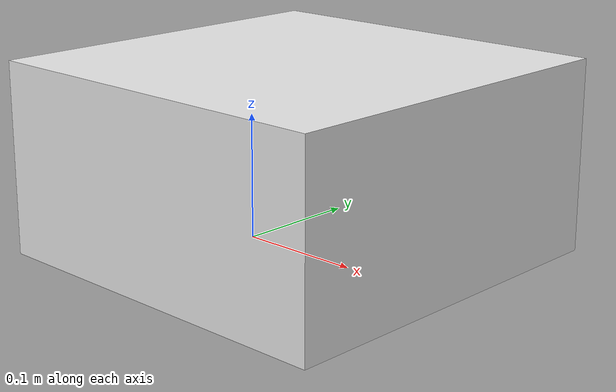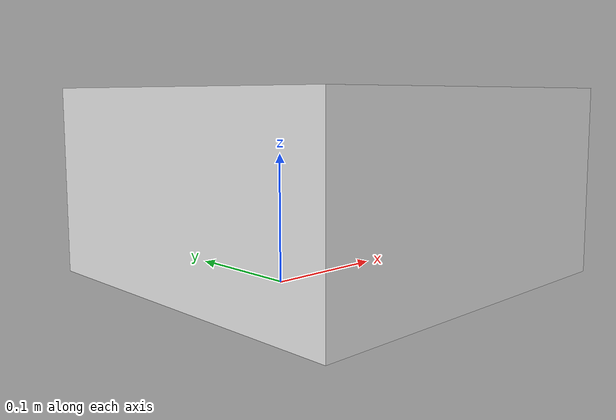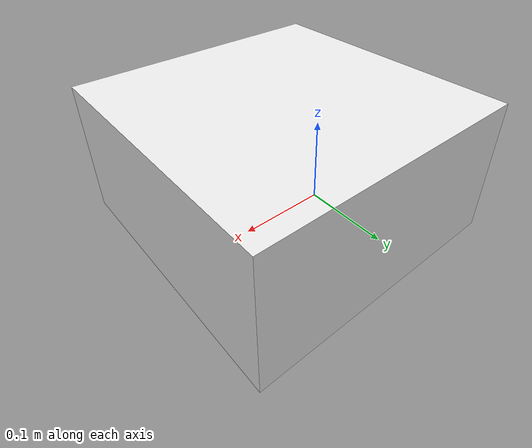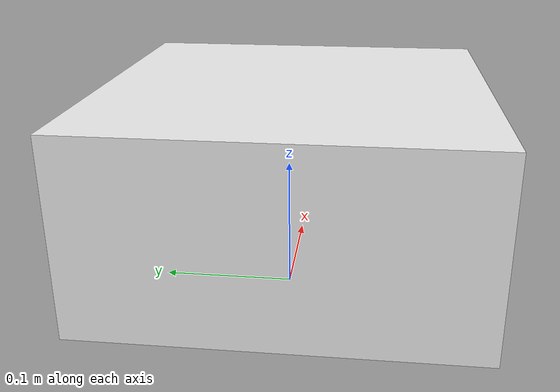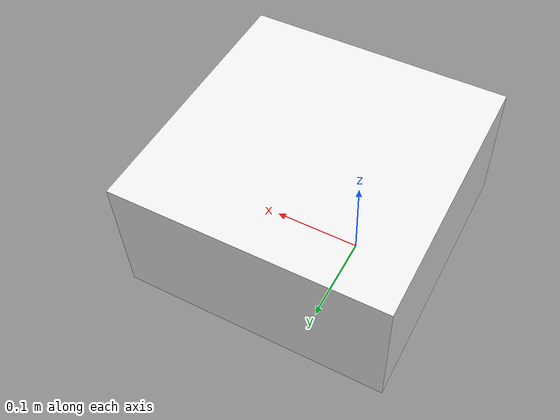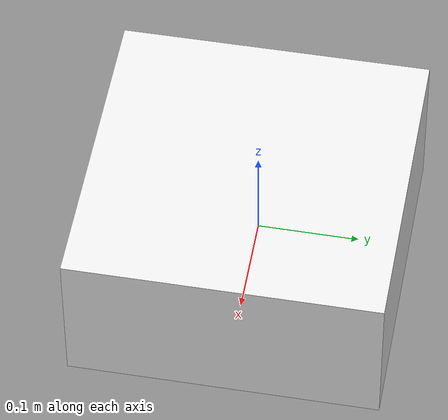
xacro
<?xml version="1.0"?>
<robot xmlns:xacro="http://www.ros.org/wiki/xacro" >

    <xacro:include filename="xacro_folder/robot_inertia_macro.xacro" />

    <!-- BASE LINK -->

    <link name="base_link">

    </link>

    <!-- CHASSIS LINK -->

    <joint name="chassis_joint" type="fixed">
        <parent link="base_link"/>
        <child link="chassis"/>
        <origin xyz="-0.1 0 0"/>
    </joint>

    <link name="chassis">
        <visual>
            <origin xyz="0.15 0 0.075"/>
            <geometry>
                <box size="0.3 0.3 0.15"/>
            </geometry>
            <material name="white"/>
        </visual>
        <collision>
            <origin xyz="0.15 0 0.075"/>
            <geometry>
                <box size="0.3 0.3 0.15"/>
            </geometry>
        </collision>
        <xacro:inertial_box mass="10" x="0.3" y="0.3" z="0.15">
            <origin xyz="0.15 0 0.075" rpy="0 0 0"/>
        </xacro:inertial_box>
    </link>

    <gazebo reference="chassis">
        <material>Gazebo/White</material>
    </gazebo>

</robot>

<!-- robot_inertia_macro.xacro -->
<robot xmlns:xacro="http://www.ros.org/wiki/xacro">

    <!-- Specify some standard inertial calculations https://en.wikipedia.org/wiki/List_of_moments_of_inertia -->
    <!-- These make use of xacro's mathematical functionality -->

    <xacro:macro name="inertial_sphere" params="mass radius *origin">
        <inertial>
            <xacro:insert_block name="origin"/>
            <mass value="${mass}" />
            <inertia ixx="${(2/5) * mass * (radius*radius)}" ixy="0.0" ixz="0.0"
                    iyy="${(2/5) * mass * (radius*radius)}" iyz="0.0"
                    izz="${(2/5) * mass * (radius*radius)}" />
        </inertial>
    </xacro:macro>

    <xacro:macro name="inertial_box" params="mass x y z *origin">
        <inertial>
            <xacro:insert_block name="origin"/>
            <mass value="${mass}" />
            <inertia ixx="${(1/12) * mass * (y*y+z*z)}" ixy="0.0" ixz="0.0"
                    iyy="${(1/12) * mass * (x*x+z*z)}" iyz="0.0"
                    izz="${(1/12) * mass * (x*x+y*y)}" />
        </inertial>
    </xacro:macro>

    <xacro:macro name="inertial_cylinder" params="mass length radius *origin">
        <inertial>
            <xacro:insert_block name="origin"/>
            <mass value="${mass}" />
            <inertia ixx="${(1/12) * mass * (3*radius*radius + length*length)}" ixy="0.0" ixz="0.0"
                    iyy="${(1/12) * mass * (3*radius*radius + length*length)}" iyz="0.0"
                    izz="${(1/2) * mass * (radius*radius)}" />
        </inertial>
    </xacro:macro>

</robot>
